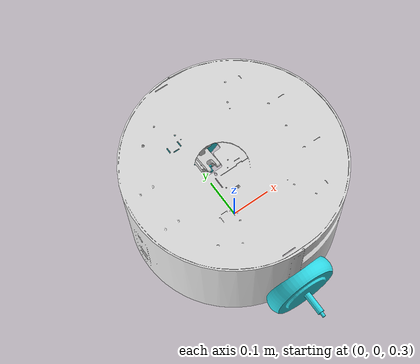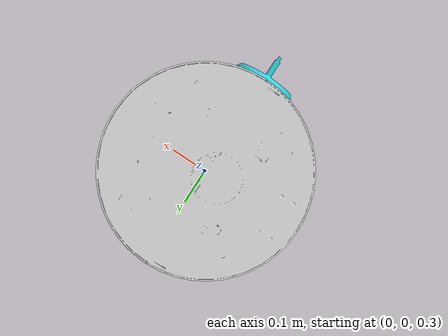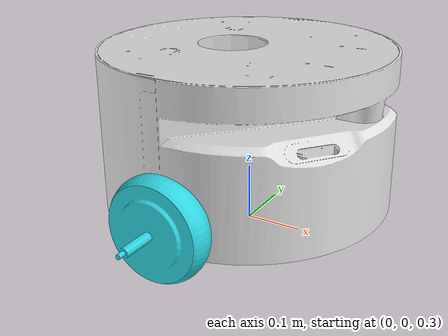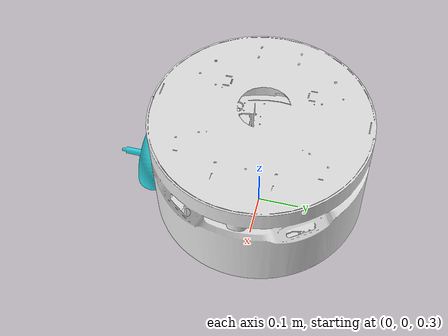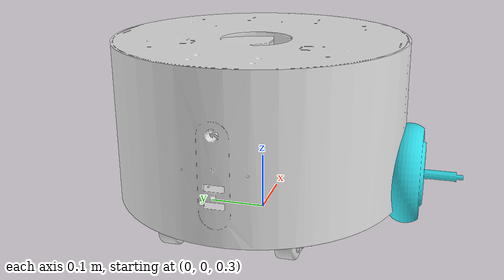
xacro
<?xml version='1.0' encoding='utf-8'?>
<robot xmlns:xacro="http://www.ros.org/wiki/xacro" name="openarm_base">

  <xacro:include filename="$(find openarm_description)/assets/robot/openarm_v1.0/urdf/base/openarm_base.xacro" />

  <xacro:openarm_base
    description_pkg="openarm_description"
    connected_to="world"
    xyz="0 0 0.31"
    rpy="0 0 0" />

</robot>

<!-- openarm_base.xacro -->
<robot xmlns:xacro="http://www.ros.org/wiki/xacro" name="openarm_base">

  <xacro:include filename="$(find openarm_description)/assets/robot/openarm_v1.0/urdf/base/openarm_base_macro.xacro" />

  <xacro:macro name="openarm_base"
               params="description_pkg:='openarm_description'
                       connected_to:='world'
                       xyz:='0 0 0'
                       rpy:='0 0 0'">

    <xacro:property name="prefix" value="openarm_base_" />

    <material name="${prefix}body_light">
      <color rgba="0.894117647058823 0.894117647058823 0.894117647058823 1" />
    </material>
    <material name="${prefix}drive_wheel_cyan">
      <color rgba="0.188235294117647 0.866666666666667 0.917647058823529 1" />
    </material>

    <xacro:if value="${connected_to != ''}">
      <link name="${connected_to}" />
      <joint name="${prefix}joint_to_${connected_to}" type="fixed">
        <parent link="${connected_to}" />
        <child link="${prefix}link" />
        <origin xyz="${xyz}" rpy="${rpy}" />
      </joint>
    </xacro:if>

    <link name="${prefix}link" />
    <joint name="${prefix}floor_offset_joint" type="fixed">
      <parent link="${prefix}link" />
      <child link="${prefix}link_body" />
      <origin xyz="0 0 0.31" rpy="0 0 0" />
    </joint>

    <link name="${prefix}link_body">
      <inertial>
        <origin xyz="0.0139877464492624 -5.68244441146032E-05 -0.124578208571542" rpy="0 0 0" />
        <mass value="3.52850301341702" />
        <inertia ixx="0.0829124179160909" ixy="6.52576053503441E-06" ixz="0.000467807221413584"
                 iyy="0.0400047585590855" iyz="-5.94413923106993E-06" izz="0.098624358497588" />
      </inertial>
      <visual>
        <origin xyz="0 0 0" rpy="0 0 0" />
        <geometry>
          <mesh filename="package://${description_pkg}/assets/robot/openarm_v1.0/meshes/base/visual/base_link.STL" />
        </geometry>
        <material name="${prefix}body_light" />
      </visual>
      <collision>
        <origin xyz="0 0 0" rpy="0 0 0" />
        <geometry>
          <mesh filename="package://${description_pkg}/assets/robot/openarm_v1.0/meshes/base/collision/base_link.STL" />
        </geometry>
      </collision>
    </link>

    <link name="${prefix}right_drive_wheel_link">
      <inertial>
        <origin xyz="2.91165459323788E-11 -6.43526715232018E-07 0.0369779577265139" rpy="0 0 0" />
        <mass value="1.14125095338992" />
        <inertia ixx="0.00208401824386845" ixy="-1.79853323308109E-13" ixz="-1.90807139016711E-12"
                 iyy="0.00208405095959488" iyz="5.27813516021113E-07" izz="0.00352927857061764" />
      </inertial>
      <visual>
        <origin xyz="0 0 0" rpy="0 0 0" />
        <geometry>
          <mesh filename="package://${description_pkg}/assets/robot/openarm_v1.0/meshes/base/visual/right_drive_wheel_link.STL" />
        </geometry>
        <material name="${prefix}drive_wheel_cyan" />
      </visual>
      <collision>
        <origin xyz="0 0 0" rpy="0 0 0" />
        <geometry>
          <mesh filename="package://${description_pkg}/assets/robot/openarm_v1.0/meshes/base/collision/right_drive_wheel_link.STL" />
        </geometry>
      </collision>
    </link>
    <joint name="${prefix}right_drive_wheel_joint" type="continuous">
      <origin xyz="-0.00217824370780602 -0.218924944717817 -0.224330452201286" rpy="-1.5707963267949 0 0" />
      <parent link="${prefix}link_body" />
      <child link="${prefix}right_drive_wheel_link" />
      <axis xyz="0 0.000125537276711018 0.999999992120196" />
    </joint>

    <link name="${prefix}left_drive_wheel_link">
      <inertial>
        <origin xyz="-3.18491113710862E-11 -6.43526715214671E-07 -0.0369779577265139" rpy="0 0 0" />
        <mass value="1.14125095338992" />
        <inertia ixx="0.00208401824386845" ixy="1.96732400865809E-13" ixz="-2.08714142198925E-12"
                 iyy="0.00208405095959488" iyz="-5.27813516020045E-07" izz="0.00352927857061764" />
      </inertial>
      <visual>
        <origin xyz="0 0 0" rpy="0 0 0" />
        <geometry>
          <mesh filename="package://${description_pkg}/assets/robot/openarm_v1.0/meshes/base/visual/left_drive_wheel_link.STL" />
        </geometry>
        <material name="${prefix}drive_wheel_cyan" />
      </visual>
      <collision>
        <origin xyz="0 0 0" rpy="0 0 0" />
        <geometry>
          <mesh filename="package://${description_pkg}/assets/robot/openarm_v1.0/meshes/base/collision/left_drive_wheel_link.STL" />
        </geometry>
      </collision>
    </link>
    <joint name="${prefix}left_drive_wheel_joint" type="continuous">
      <origin xyz="-0.00217793050105813 0.218879130112312 -0.224330452201204" rpy="-1.5707963267949 0 0" />
      <parent link="${prefix}link_body" />
      <child link="${prefix}left_drive_wheel_link" />
      <axis xyz="0 0.000125537276710988 0.999999992120196" />
    </joint>

    <xacro:base_caster prefix="${prefix}" description_pkg="${description_pkg}" corner="fr"
                       caster_xyz="0.149800623917563 -0.0925229073028034 -0.2186"
                       wheel_z="-0.00149999999415462" parent_link="${prefix}link_body" />
    <xacro:base_caster prefix="${prefix}" description_pkg="${description_pkg}" corner="fl"
                       caster_xyz="0.149800623917537 0.0924770926972476 -0.2186"
                       wheel_z="0.00150000000579448" parent_link="${prefix}link_body" />
    <xacro:base_caster prefix="${prefix}" description_pkg="${description_pkg}" corner="br"
                       caster_xyz="-0.152199376082463 -0.0940229073027524 -0.2186"
                       wheel_z="5.79430947666992E-12" parent_link="${prefix}link_body" />
    <xacro:base_caster prefix="${prefix}" description_pkg="${description_pkg}" corner="bl"
                       caster_xyz="-0.152199376082463 0.0939770926972477 -0.2186"
                       wheel_z="5.79435111003335E-12" parent_link="${prefix}link_body" />

    <!-- Gazebo: drive wheels có ma sát cao để bám đường -->
    <gazebo reference="${prefix}right_drive_wheel_link">
      <mu1>1.5</mu1>
      <mu2>1.5</mu2>
      <kp>1000000.0</kp>
      <kd>100.0</kd>
      <minDepth>0.001</minDepth>
    </gazebo>
    <gazebo reference="${prefix}left_drive_wheel_link">
      <mu1>1.5</mu1>
      <mu2>1.5</mu2>
      <kp>1000000.0</kp>
      <kd>100.0</kd>
      <minDepth>0.001</minDepth>
    </gazebo>

  </xacro:macro>

</robot>

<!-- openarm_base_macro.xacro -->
<robot xmlns:xacro="http://www.ros.org/wiki/xacro">

  <xacro:macro name="base_caster"
               params="prefix description_pkg corner caster_xyz wheel_z parent_link:='${prefix}link'">
    <link name="${prefix}${corner}_caster_link">
      <inertial>
        <origin xyz="-0.0210296737391897 2.66276711600594E-05 -0.0404565446191801" rpy="0 0 0" />
        <mass value="0.174999250427368" />
        <inertia ixx="8.59598402931729E-05" ixy="1.30108354990252E-07" ixz="-7.86718942953962E-06"
                 iyy="9.65979989897865E-05" iyz="2.17811240261892E-07" izz="7.64688653952788E-05" />
      </inertial>
      <visual>
        <origin xyz="0 0 0" rpy="0 0 0" />
        <geometry>
          <mesh filename="package://${description_pkg}/assets/robot/openarm_v1.0/meshes/base/visual/${corner}_caster_link.STL" />
        </geometry>
        <material name="${prefix}body_light" />
      </visual>
      <collision>
        <origin xyz="0 0 0" rpy="0 0 0" />
        <geometry>
          <mesh filename="package://${description_pkg}/assets/robot/openarm_v1.0/meshes/base/collision/${corner}_caster_link.STL" />
        </geometry>
      </collision>
    </link>
    <joint name="${prefix}${corner}_caster_joint" type="continuous">
      <origin xyz="${caster_xyz}" rpy="0 0 0" />
      <parent link="${parent_link}" />
      <child link="${prefix}${corner}_caster_link" />
      <axis xyz="0 0 1" />
      <dynamics damping="0.01" friction="0.0"/>
    </joint>

    <link name="${prefix}${corner}_wheel_link">
      <inertial>
        <origin xyz="-3.97836671182927E-05 -9.02813330067032E-06 ${wheel_z}" rpy="0 0 0" />
        <mass value="0.109320570218184" />
        <inertia ixx="3.6860500337048E-05" ixy="-9.46425018050332E-09" ixz="1.95534990593222E-11"
                 iyy="3.69224586520118E-05" iyz="3.31849367825639E-12" izz="4.97629238797921E-05" />
      </inertial>
      <visual>
        <origin xyz="0 0 0" rpy="0 0 0" />
        <geometry>
          <mesh filename="package://${description_pkg}/assets/robot/openarm_v1.0/meshes/base/visual/${corner}_wheel_link.STL" />
        </geometry>
        <material name="${prefix}body_light" />
      </visual>
      <collision>
        <origin xyz="0 0 0" rpy="0 0 0" />
        <geometry>
          <mesh filename="package://${description_pkg}/assets/robot/openarm_v1.0/meshes/base/collision/${corner}_wheel_link.STL" />
        </geometry>
      </collision>
    </link>
    <joint name="${prefix}${corner}_wheel_joint" type="continuous">
      <origin xyz="-0.0314999999999983 0 -0.058" rpy="-1.5707963267949 0 0" />
      <parent link="${prefix}${corner}_caster_link" />
      <child link="${prefix}${corner}_wheel_link" />
      <axis xyz="0 0 1" />
      <dynamics damping="0.005" friction="0.0"/>
    </joint>

    <!-- Gazebo: caster wheel có ma sát thấp để trượt dễ dàng -->
    <gazebo reference="${prefix}${corner}_wheel_link">
      <mu1>0.1</mu1>
      <mu2>0.1</mu2>
      <kp>1000000.0</kp>
      <kd>100.0</kd>
      <minDepth>0.001</minDepth>
    </gazebo>
  </xacro:macro>

</robot>
